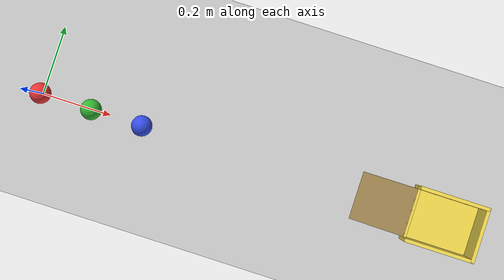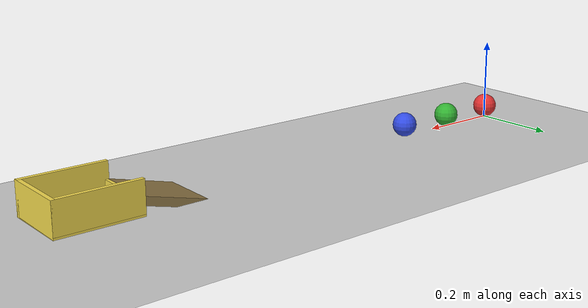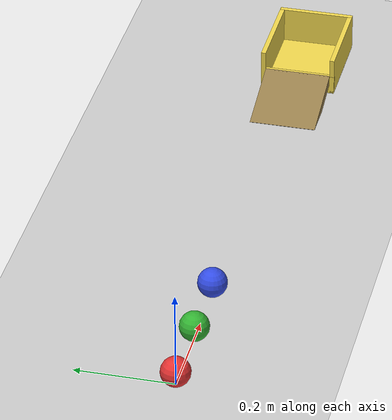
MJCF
<mujoco model="three_ball_chain_into_cup">
  <option timestep="0.002"/>
  <visual>
    <global offwidth="1280" offheight="720"/>
  </visual>
  <worldbody>
    <light name="sun" pos="0.6 -1 2" dir="0 0.4 -1" directional="true"/>
    <geom name="floor" type="plane" size="3 3 0.1" rgba="0.8 0.8 0.8 1"/>

    <body name="ball1" pos="0 0 0.03">
      <freejoint name="ball1_free"/>
      <geom name="ball1_geom" type="sphere" size="0.03" mass="0.1" condim="6" friction="1 0.005 0.002" rgba="0.9 0.2 0.2 1"/>
    </body>
    <body name="ball2" pos="0.15 0 0.03">
      <freejoint name="ball2_free"/>
      <geom name="ball2_geom" type="sphere" size="0.03" mass="0.1" condim="6" friction="1 0.005 0.002" rgba="0.2 0.7 0.2 1"/>
    </body>
    <body name="ball3" pos="0.3 0 0.03">
      <freejoint name="ball3_free"/>
      <geom name="ball3_geom" type="sphere" size="0.03" mass="0.1" condim="6" friction="1 0.005 0.002" rgba="0.2 0.3 0.9 1"/>
    </body>

    <body name="ramp" pos="1.0179 0 0.0103" euler="0 -15 0">
      <geom name="ramp_geom" type="box" size="0.08 0.07 0.01" rgba="0.6 0.5 0.3 1"/>
    </body>

    <body name="cup" pos="1.19 0 0">
      <geom name="cup_base" type="box" pos="0 0 0.0025" size="0.1 0.08 0.0025" rgba="0.95 0.85 0.3 1"/>
      <geom name="cup_front_wall" type="box" pos="-0.095 0 0.02" size="0.005 0.08 0.02" rgba="0.95 0.85 0.3 1"/>
      <geom name="cup_back_wall" type="box" pos="0.095 0 0.04" size="0.005 0.08 0.04" rgba="0.95 0.85 0.3 1"/>
      <geom name="cup_left_wall" type="box" pos="0 0.075 0.04" size="0.1 0.005 0.04" rgba="0.95 0.85 0.3 1"/>
      <geom name="cup_right_wall" type="box" pos="0 -0.075 0.04" size="0.1 0.005 0.04" rgba="0.95 0.85 0.3 1"/>
    </body>
  </worldbody>

  <contact>
    <exclude name="ex12" body1="ball1" body2="ball2"/>
    <exclude name="ex23" body1="ball2" body2="ball3"/>
    <pair name="pair12" geom1="ball1_geom" geom2="ball2_geom" condim="1" solref="-200000 -5"/>
    <pair name="pair23" geom1="ball2_geom" geom2="ball3_geom" condim="1" solref="-200000 -5"/>
  </contact>

  <keyframe>
    <key name="start" qpos="0 0 0.03 1 0 0 0 0.15 0 0.03 1 0 0 0 0.3 0 0.03 1 0 0 0" qvel="2.5 0 0 0 83.3333 0 0 0 0 0 0 0 0 0 0 0 0 0"/>
  </keyframe>
</mujoco>
